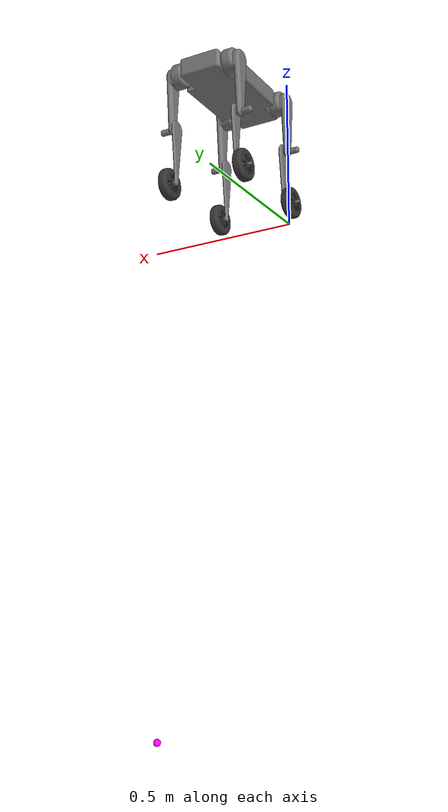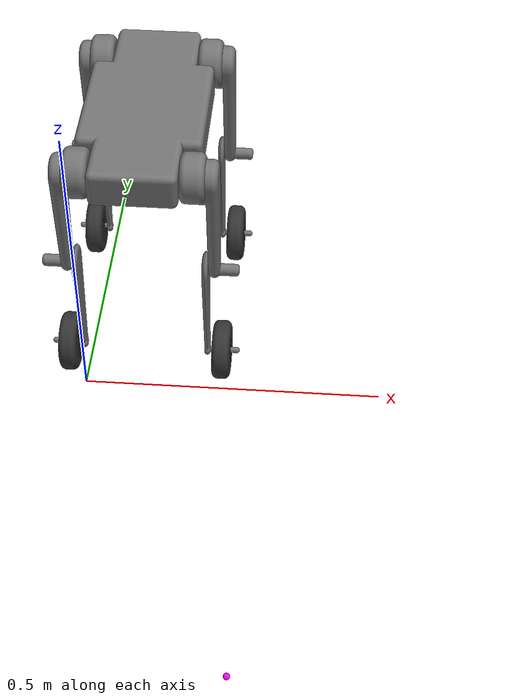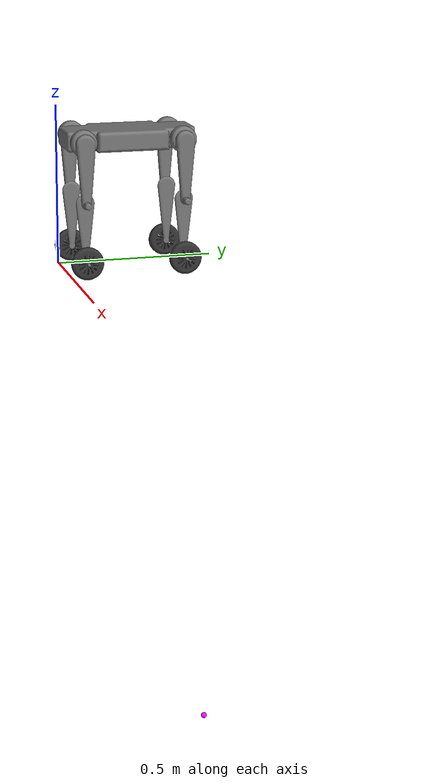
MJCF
<mujoco>
    <compiler angle="radian" autolimits="true"/>
    <option gravity="0 0 -9.81"/>
    <option timestep="0.0001" integrator = "RK4"/>

    <default>

    <default class="WLR">

        <geom friction="0.6" margin="0.001"/>
      <joint axis="1 0 0" damping="2" armature="0.01" frictionloss="0.2"/>
      <position kp="200" forcerange="-20 20"/>

        <default class="hip_joint">
            <joint type="hinge" axis="1 0 0" pos = "-0.01 0.0 0.09"  range="-1.5708 1.5708"  />
            <position ctrlrange="-1.5708 1.5708" forcelimited="true" forcerange="-40 40"/>
        </default>
        <default class="knee_joint">
            <joint type="hinge" axis="1 0 0" pos = "0 0.0 0.09"  range="-0.785398 2.0944" />
             <position ctrlrange="-0.785398 2.0944" forcelimited="true" forcerange="-40 40"/>
        </default>
        <default class="wheel_joint">
            <joint type="hinge" axis="-1 0 0"/>
            <motor ctrlrange="-200.5 200.5"/>
        </default>

    <default class="visual">
        <geom group="1" type="mesh" contype="0" conaffinity="0" material="offwhite"/>
    </default>

    <default class="collision">
        <geom group="3" type="capsule" friction="0.7 0.5 0.1"/>

         <default class="body">
            <geom type="box" size="0.1 0.11 0.03" />
        </default>

         <default class="fb_box">
            <geom type="box" size="0.07 0.045 0.03" />
        </default>

        <default class="leg_link_collision">
            <geom type="capsule" size="0.02 0.07"/>
        </default>

        <default class="hip">
            <geom type="cylinder" size="0.04 0.02" quat="0.707 0 0.707 0"/>
        </default>

        <default class="knee">
            <geom type="cylinder" size="0.01 0.025" quat="0.707 0 0.707 0"/>
        </default>

        <default class="leg_collision">
            <geom size="0.01 0.08"/>

        </default>

        <default class="wheel_collision">
            <geom type="cylinder" size="0.05 0.015"  quat="0.707 0 0.707 0" friction="0.8 0.2 0.02"/>

        </default>
        <default class="wheel_cup">
            <geom type="cylinder" size="0.005 0.025" quat="0.707 0 0.707 0"/>
        </default>
    </default>
 </default>
</default>

 <asset>
        <material name="dark" specular="0" shininess="0.25" rgba="0.2 0.2 0.2 1"/>

        <material name="offwhite" specular="0" shininess="0.25" rgba="0.45 0.45 0.45 1"/>

        <mesh class="WLR" name="base" file="Chassis.STL"/>
        <mesh class="WLR" name="ll" file="Leg_Link.STL"/>
        <mesh class="WLR" name="leg" file="Leg.STL"/>
        <mesh class="WLR" name="wheel" file="Wheel.STL"/>
    </asset>

    <worldbody>

     <body name="chassis" pos="0 0 .38" childclass="WLR">
      <inertial mass="4.8" pos="0.1 0.183 0.06"
            fullinertia="0.0154 0.01468 0.02815 0 0 0"/>

        <geom class="body" pos = "0.1 0.2 0.03"/>
        <geom name = "back_box" class="fb_box" pos = "0.1 0.045 0.03" />
        <geom name = "front_box" class="fb_box" pos = "0.1 0.355 0.03"/>
        <!-- Visual -->
        <geom class="visual" mesh="base" material="offwhite"/>
        <joint name="body_joint" type="free" />

        <site name="imu_site" pos="0.1 0.2 -0.01" size="0.005" rgba="0 0 0 0"/>

        <body name="BR_hip" pos="0.19 0.045 0.03">
         <site name="BR_end_effector" pos="0 0.0 -0.224" size="0.01" type="sphere" rgba="0 0 0 0"/>
        <inertial mass="0.7" pos="0 0 0"
            fullinertia="0.0006 0.0006 0.0009 0 0 0"/> <!-- Hip -->
        <geom class="hip"/>
        <body name="BR_LL" pos="0.04 0 -0.09">
        <inertial mass="0.5" pos="0 0 0"
            fullinertia="0.0018 0.0018 0.00018 0 0 0"/>
                <geom class="leg_link_collision"/>

                <geom class="visual" mesh="ll" pos="-0.1 -0.04 -0.105" />
                <joint  name = "BR_hip_joint" type="hinge" axis="1 0 0" pos = "-0.01 0.0 0.09"  range="-1.5708 1.5708"  />

            <body name="BR_knee"  pos = "0.0 0.0 -0.09">
            <geom class="knee"/>
            <body name="BR_Leg" pos="-0.025 0.0 -0.09">
            <inertial mass="0.5" pos="0 0 0.0265"
                fullinertia="0.0012 0.0012 0.000015 0 0 0"/>
                <geom class="leg_collision"/>
                <!-- Visual -->
                <geom class="visual" mesh="leg" pos="-0.005 -0.03 -0.1" material="offwhite"/>
                <joint class="knee_joint" name = "BR_knee_joint"/>
                <site name="BR_wheel_site" pos="0.0 -0.04 -0.115" size="0.005" rgba="0 0 0 0"/>
                <body name="BR_Wheel" pos="0.03 0.0 -0.09">
                <inertial mass="0.2" pos="0 0 0"
                     fullinertia="0.00015 0.00015 0.00025 0 0 0"/>
                     <geom class="wheel_collision" name="BR_wheel_collision"/>
                    <geom class="wheel_cup"  pos = "0.0 0.0 0.0"/>
                    <!-- Visual -->
                    <geom class="visual" mesh="wheel" pos = "-0.02 -0.0513 -0.05" material = "dark" />

                     <joint class="wheel_joint" name = "BR_wheel_joint"/>

            </body>

            </body>
         </body>

        </body>
    </body>

        <body name="FR_hip" pos="0.19 0.355 0.03">
        <inertial mass="0.7" pos="0 0 0"
    fullinertia="0.0005 0.0005 0.0008 0 0 0"/>
     <site name="BR_hip_site" pos="0 0.09 -2." size="0.01" type="sphere" rgba="1 0 1 1"/>

        <geom class="hip"/>
        <body name="FR_LL" pos="0.04 0 -0.09">
       <inertial mass="0.5" pos="0 0 0"
            fullinertia="0.0018 0.0018 0.00018 0 0 0"/>
             <!-- Collision -->
                <geom class="leg_link_collision"/>

                <geom class="visual" mesh="ll" pos="-0.1 -0.04 -0.105"/>
                <joint class="hip_joint" name = "FR_hip_joint"/>
                <body name="FR_knee"  pos = "0.00 0.0 -0.09">
                <geom class="knee"/>
            <body name="FR_Leg" pos="-0.025 0.0 -0.09">
            <inertial mass="0.5" pos="0 0 0.0265"
                fullinertia="0.0012 0.0012 0.000015 0 0 0"/>
                <geom class="leg_collision"/>

                <geom class="visual" mesh="leg" pos="-0.005 -0.03 -0.1" material="offwhite"/>
                <joint class="knee_joint" name = "FR_knee_joint"/>
                <site name="FR_wheel_site" pos="0.0 -0.04 -0.115" size="0.005" rgba="0 0 0 0"/>
                <body name="FR_Wheel" pos="0.03 0.0 -0.09">
                <inertial mass="0.2" pos="0 0 0"
                        fullinertia="0.00015 0.00015 0.00025 0 0 0"/>
                     <geom class="wheel_collision" name="FR_wheel_collision"/>
                    <geom class="wheel_cup"  pos = "0.0 0.0 0.0"/>

                    <geom class="visual" mesh="wheel" pos = "-0.02 -0.0513 -0.05" material = "dark"/>
                     <joint class="wheel_joint" name = "FR_wheel_joint"/>

            </body>
            </body>
            </body>
        </body>
    </body>

         <body name="BL_hip" pos="0.01 0.045 0.03">
        <inertial mass="0.7" pos="0 0 0"
            fullinertia="0.0006 0.0006 0.0009 0 0 0"/>
        <geom class="hip"/>
        <body name="BL_LL" pos="-0.04 0 -0.09">
             <inertial mass="0.5" pos="0 0 0"
                fullinertia="0.0018 0.0018 0.00018 0 0 0"/>
             <!-- Collision -->
                <geom class="leg_link_collision"/>

                <geom class="visual" mesh="ll" pos="0.1 0.04 -0.105" quat="0 0 0 1"/>
                <joint class="hip_joint" name = "BL_hip_joint"/>
            <body name="BL_knee"  pos = "0 0.0 -0.09">
                    <geom class="knee"/>
            <body name="BL_Leg" pos="0.025 0.0 -0.09">
             <inertial mass="0.5" pos="0 0 0.0265"
                fullinertia="0.0012 0.0012 0.000015 0 0 0"/>
                <geom class="leg_collision" />

                <geom class="visual" mesh="leg" pos="0.005 0.03 -0.1" quat="0 0 0 1" material="offwhite"/>
                <joint class="knee_joint" name = "BL_knee_joint" />
                <site name="BL_wheel_site" pos="0.0 -0.04 -0.115" size="0.005" rgba="0 0 0 0"/>

                <body name="BL_Wheel" pos="-0.03 0.0 -0.09">
                <inertial mass="0.2" pos="0 0 0"
                    fullinertia="0.00015 0.00015 0.00025 0 0 0"/>
                     <geom class="wheel_collision" name="BL_wheel_collision"/>
                    <geom class="wheel_cup"  pos = "0.0 0.0 0.0"/>

                    <geom class="visual" mesh="wheel" pos = "-0.01 -0.0487 -0.05" material = "dark"/>
                     <joint class="wheel_joint" name = "BL_wheel_joint"/>

            </body>
            </body>

            </body>
        </body>
    </body>

         <body name="FL_hip" pos="0.01 0.355 0.03">
         <inertial mass="0.7" pos="0 0 0"
            fullinertia="0.0006 0.0006 0.0009 0 0 0"/>
        <geom class="hip"/>
        <body name="FL_LL" pos="-0.04 0 -0.09">
        <inertial mass="0.5" pos="0 0 0"
            fullinertia="0.0018 0.0018 0.00018 0 0 0"/>

                <geom class="leg_link_collision"/>

                <geom class="visual" mesh="ll" pos="0.1 0.04 -0.105" quat="0 0 0 1"/>
                <joint class="hip_joint" name = "FL_hip_joint"/>
                <body name="FL_knee"  pos = "0 0.0 -0.09">
                    <geom class="knee"/>
            <body name="FL_Leg" pos="0.025 0.0 -0.09">
            <inertial mass="0.5" pos="0 0 0.0265"
                    fullinertia="0.0012 0.0012 0.000015 0 0 0"/>
                <geom class="leg_collision" />

                <geom class="visual" mesh="leg" pos="0.005 0.03 -0.1" quat="0 0 0 1" material="offwhite"/>
                <joint class="knee_joint" name = "FL_knee_joint"/>
                <site name="FL_wheel_site" pos="0.0 -0.04 -0.115" size="0.005" rgba="0 0 0 0"/>

                <body name="FL_Wheel" pos="-0.03 0.0 -0.09">
                     <inertial mass="0.2" pos="0 0 0"
                        fullinertia="0.00015 0.00015 0.00025 0 0 0"/>
                    <geom class="wheel_collision" name="FL_wheel_collision"/>
                    <geom class="wheel_cup"  pos = "0.0 0.0 0.0"/>

                    <geom class="visual" mesh="wheel" pos = "-0.01 -0.0487 -0.05" material = "dark"/>
                     <joint class="wheel_joint" name = "FL_wheel_joint"/>

            </body>
            </body>

            </body>
        </body>

    </body>
</body>

    </worldbody>

    <actuator>

        <!--hip joints motors-->

        <!--right hip joints motors-->
        <position class= "hip_joint" name="BR_hip_joint_motor" joint="BR_hip_joint"/>
        <position class= "hip_joint" name="FR_hip_joint_motor" joint="FR_hip_joint"/>
        <!--left hip joints motors-->

        <position class= "hip_joint" name="FL_hip_joint_motor" joint="FL_hip_joint"/>
        <position class= "hip_joint" name="BL_hip_joint_motor" joint="BL_hip_joint"/>
        <!--knee joints motors-->

        <!--right knee joints motors-->
        <position class= "knee_joint" name="BR_knee_joint_motor" joint="BR_knee_joint" />
        <position class= "knee_joint" name="FR_knee_joint_motor" joint="FR_knee_joint"/>
        <!--left knee joints motors-->
        <position class= "knee_joint" name="FL_knee_joint_motor" joint="FL_knee_joint"/>
        <position class= "knee_joint" name="BL_knee_joint_motor" joint="BL_knee_joint"/>

        <!--wheel joints motors-->

        <!--right wheel joints motors-->
        <motor class= "wheel_joint" name="BR_wheel_joint_motor" joint="BR_wheel_joint"/>
        <motor class= "wheel_joint" name="FR_wheel_joint_motor" joint="FR_wheel_joint"/>
        <!--left wheel joints motors-->
        <motor class= "wheel_joint" name="FL_wheel_joint_motor" joint="FL_wheel_joint" />
        <motor class= "wheel_joint" name="BL_wheel_joint_motor" joint="BL_wheel_joint" />

    </actuator>

    <sensor>

    <accelerometer name="imu_accel" site="imu_site"/>
    <gyro name="imu_gyro" site="imu_site"/>

    <!-- Hip Joint Sensors -->
    <jointpos name="BR_hip_pos_test" joint="BR_hip_joint"/>
    <jointpos name="FR_hip_pos_test" joint="FR_hip_joint"/>
    <jointpos name="BL_hip_pos_test" joint="BL_hip_joint"/>
    <jointpos name="FL_hip_pos_test" joint="FL_hip_joint"/>

    <jointpos name="BR_hip_pos" joint="BR_hip_joint"/>
    <jointpos name="FR_hip_pos" joint="FR_hip_joint"/>
    <jointpos name="BL_hip_pos" joint="BL_hip_joint"/>
    <jointpos name="FL_hip_pos" joint="FL_hip_joint"/>

    <jointpos name="BR_knee_pos_test" joint="BR_knee_joint"/>
    <jointpos name="FR_knee_pos_test" joint="FR_knee_joint"/>
    <jointpos name="BL_knee_pos_test" joint="BL_knee_joint"/>
    <jointpos name="FL_knee_pos_test" joint="FL_knee_joint"/>

    <!-- Knee Joint Sensors -->
    <jointpos name="BR_knee_pos" joint="BR_knee_joint"/>
    <jointpos name="FR_knee_pos" joint="FR_knee_joint"/>
    <jointpos name="BL_knee_pos" joint="BL_knee_joint"/>
    <jointpos name="FL_knee_pos" joint="FL_knee_joint"/>

    </sensor>

<keyframe>
     <key name="home"
     qpos="0 0 0.244 1 0 0 0
           -0.9 1.8 0
           -0.9 1.8 0
           -0.9 1.8 0
           -0.9 1.8 0"
     ctrl=" -0.9 -0.9 -0.9 -0.9
           1.8 1.8 1.8 1.8
           0 0 0 0"/>

</keyframe>

</mujoco>
